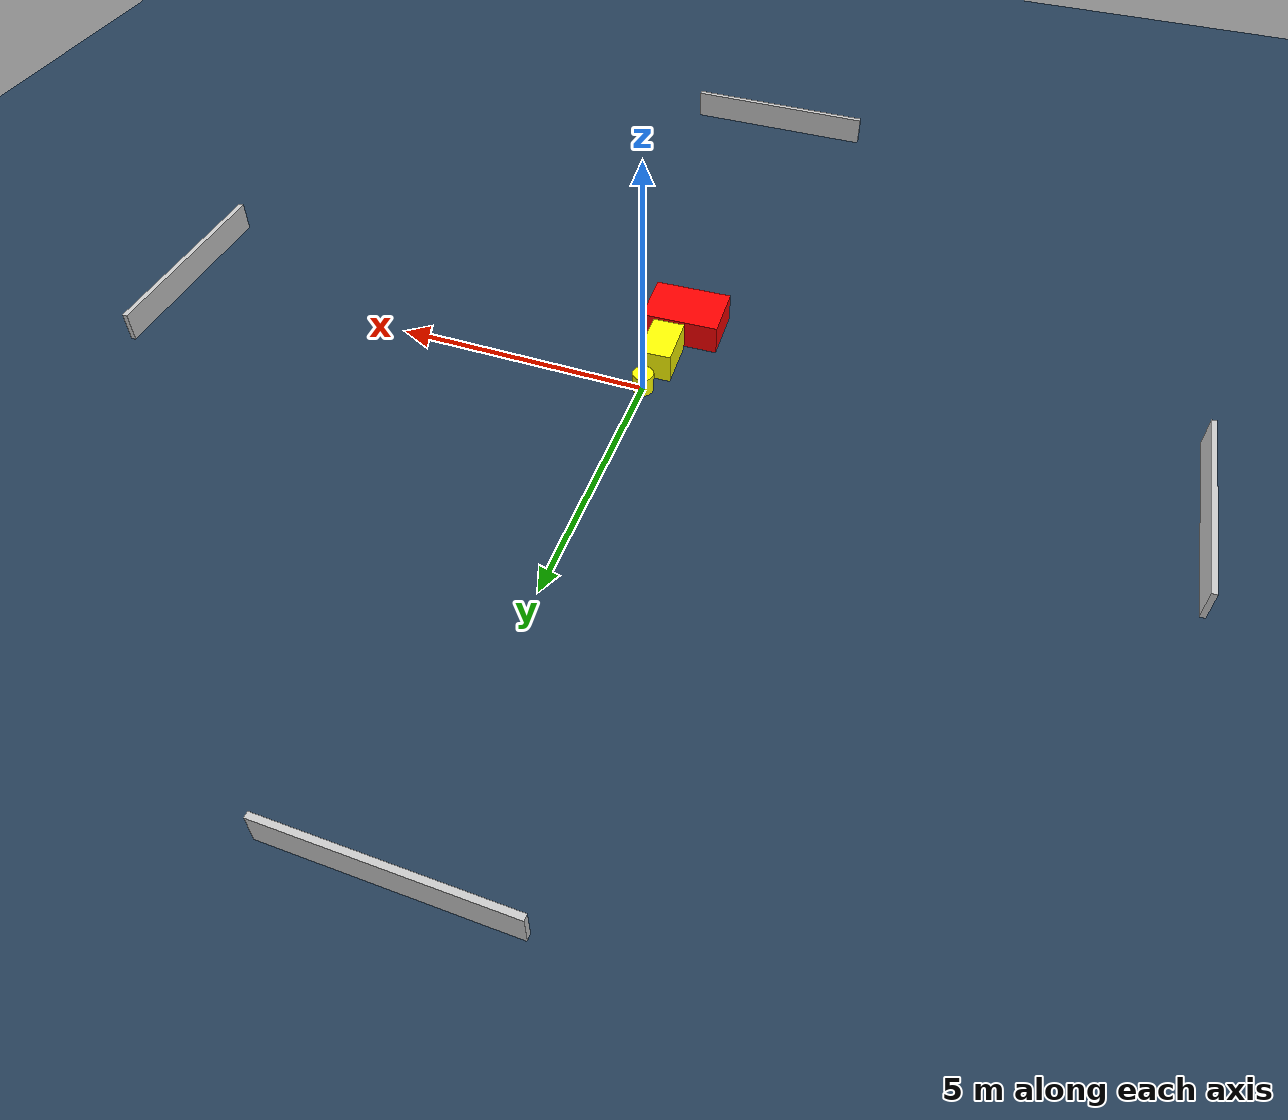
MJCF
<?xml version="1.0" ?>
<mujoco model="generated_environment">
  <option timestep="0.01" integrator="RK4" cone="elliptic"/>
  <default>
    <geom density="1"/>
  </default>
  <asset>
    <texture builtin="gradient" height="3072" name="skybox" rgb1="0.3 0.5 0.7" rgb2="0 0 0" type="skybox" width="512"/>
    <texture builtin="checker" height="300" name="groundplane" rgb1="0.2 0.3 0.4" rgb2="0.1 0.2 0.3" type="2d" width="300"/>
    <material name="groundplane" reflectance="0.2" texrepeat="5 5" texture="groundplane"/>
  </asset>
  <worldbody>
    <light dir="0 0 -1" directional="true" pos="0 0 1.5"/>
    <geom condim="3" friction="0.5 0.005 0.001" material="groundplane" name="floor" pos="0 0 0" size="0 0 0.05" type="plane"/>
    <body name="walls">
      <geom name="wall_1" condim="4" pos="-10.0 0.0 0.3" rgba="0.800000011920929 0.800000011920929 0.800000011920929 1.0" size="0.05 2.0 0.3" type="box"/>
      <geom name="wall_2" condim="4" pos="10.0 0.0 0.3" rgba="0.800000011920929 0.800000011920929 0.800000011920929 1.0" size="0.05 2.0 0.3" type="box"/>
      <geom name="wall_3" condim="4" pos="0.0 -10.0 0.3" rgba="0.800000011920929 0.800000011920929 0.800000011920929 1.0" size="2.0 0.05 0.3" type="box"/>
      <geom name="wall_4" condim="4" pos="0.0 10.0 0.3" rgba="0.800000011920929 0.800000011920929 0.800000011920929 1.0" size="2.0 0.05 0.3" type="box"/>
    </body>
    <body name="robot">
      <joint name="joint_x" type="slide" pos="0 0 0" axis="1 0 0"/>
      <joint name="joint_y" type="slide" pos="0 0 0" axis="0 1 0"/>
      <geom name="robot" type="cylinder" pos="0.0 0.0 0.2" size="0.2 0.2 0.0" mass="5.0" friction="1.0 0.005 0.0001" condim="4" rgba="1.0 1.0 0.0 1.0"/>
    </body>
    <body name="obstacle_1_movable">
      <geom name="obstacle_1_movable" condim="4" pos="-0.07863592053609167 -0.8476470017383892 0.3" euler="0 0 182.58790975203075" friction="0.0 0.005 0.001" rgba="1.0 1.0 0.0 1.0" size="0.30906743359800953 0.49658196695786266 0.3" type="box" mass="0.1"/>
      <joint type="free"/>
    </body>
    <body name="obstacle_2_static">
      <geom name="obstacle_2_static" condim="4" pos="-0.2206671467402459 -1.9469752769464355 0.3" euler="0 0 2.158847143293423" friction="0.0 0.005 0.001" rgba="1.0 0.0 0.0 1.0" size="0.7507661070236897 0.53341445318073 0.3" type="box"/>
    </body>
  </worldbody>
  <actuator>
    <motor name="actuator_x" joint="joint_x" gear="1" ctrlrange="-1 1"/>
    <motor name="actuator_y" joint="joint_y" gear="1" ctrlrange="-1 1"/>
  </actuator>
</mujoco>
